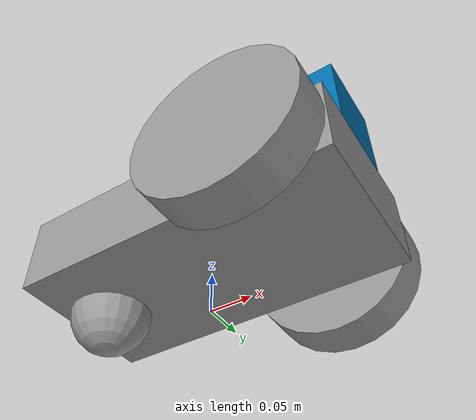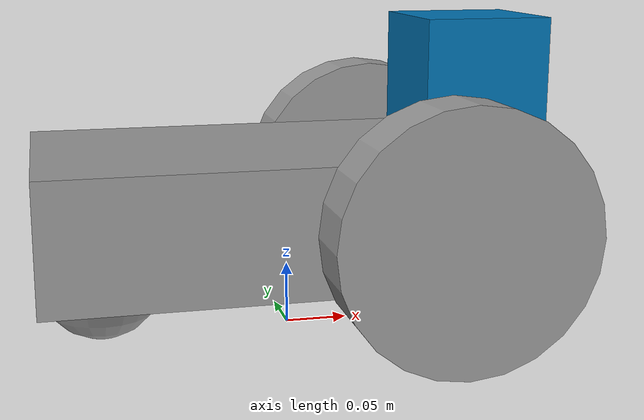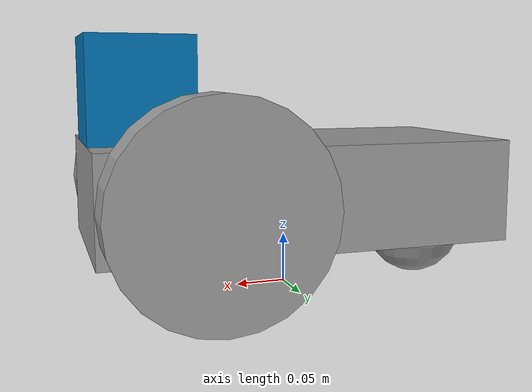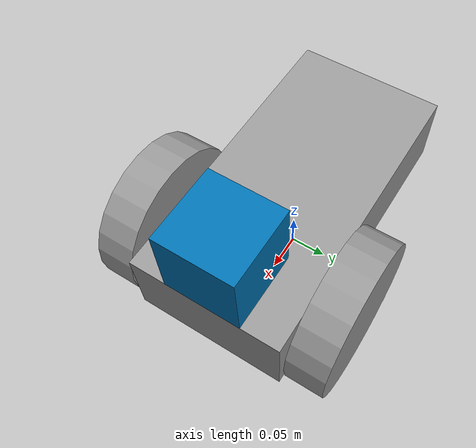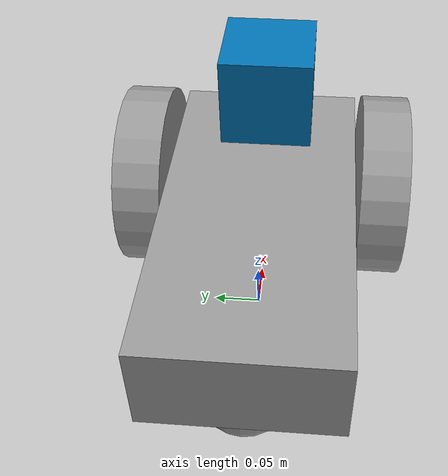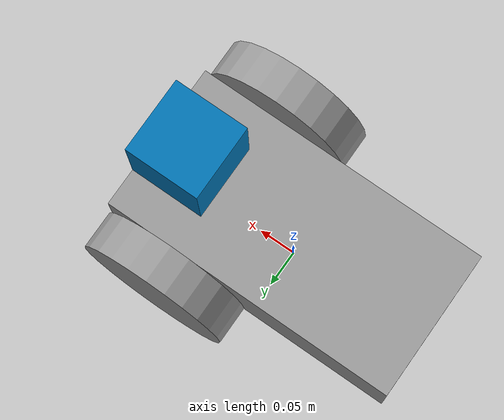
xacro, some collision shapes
<?xml version="1.0"?>
<!-- Revolute-Revolute Manipulator -->
<robot name="kejia" xmlns:xacro="http://www.ros.org/wiki/xacro">

  <!-- Constants for robot dimensions -->
  <xacro:property name="PI" value="3.1415926535897931"/>
  <xacro:property name="mass" value="1" /> <!-- arbitrary value for mass -->
  <xacro:property name="base_length" value=".4" />
  <xacro:property name="base_width" value=".2" />
  <xacro:property name="base_height" value=".1" />

  <xacro:property name="caster_radius" value="0.05" />
  <xacro:property name="mass" value="1" />

  <xacro:property name="wheel_radius" value="2" /> <!-- Link 1 -->

  <!-- Import all Gazebo-customization elements, including Gazebo colors -->
  <xacro:include filename="$(find kejia_description)/urdf/kejia.gazebo" />
  <!-- Import Rviz colors -->
  <xacro:include filename="$(find kejia_description)/urdf/materials.xacro" />

  <!-- Used for fixing robot to Gazebo 'base_link' -->
  <link name="world"/>

  <joint name="fixed" type="floating">
    <parent link="world"/>
    <child link="base_link"/>
  </joint>

  <!-- Base Link -->
  <link name="base_link">
    <collision>
      <origin xyz="0 0 .1" rpy="0 0 0"/>
      <geometry>
        <box size="${base_length} ${base_width} ${base_height}"/>
      </geometry>
    </collision>

    <visual name='visual'>
      <origin xyz="0 0 .1" rpy="0 0 0"/>
      <geometry>
        <box size="${base_length} ${base_width} ${base_height}"/>
      </geometry>
      <material name="grey"/>
    </visual>

    <!--TODO-->
    <inertial>
      <origin xyz="0 0 .1" rpy="0 0 0"/>
      <mass value="${mass}"/>
      <inertia
      ixx="1" ixy="0.0" ixz="0.0"
      iyy="1" iyz="0.0"
      izz="1"/>
    </inertial>

    <collision>
      <origin xyz="-0.5 0 0.05" rpy="0 0 0"/>
      <geometry>
        <sphere radius=".05"/>
      </geometry>
    </collision>

    <visual>
      <origin xyz="-0.15 0 0.05" rpy="0 0 0"/>
      <geometry>
        <sphere radius=".05"/>
      </geometry>
      <material name="grey"/>
    </visual>

  </link>

  <!-- Left Wheel -->
  <link name="left_wheel">
    <collision>
      <origin xyz="0 0 0" rpy="0 1.5707 1.5707"/>
      <geometry>
        <cylinder length=".05" radius=".1"/>
      </geometry>
    </collision>
    <visual>
      <origin xyz="0 0 0" rpy="0 1.5707 1.5707"/>
      <geometry>
        <cylinder length=".05" radius=".1"/>
      </geometry>
      <material name="grey"/>
    </visual>
    <inertial>
      <origin xyz="0 0 0" rpy="0 1.5707 1.5707"/>
      <mass value="${mass}"/>
      <inertia
      ixx="1" ixy="0.0" ixz="0.0"
      iyy="1" iyz="0.0"
      izz="1"/>
    </inertial>
  </link>
  <!-- Right Wheel -->
  <link name="right_wheel">
    <collision>
      <origin xyz="0 0 0" rpy="0 1.5707 1.5707"/>
      <geometry>
        <cylinder length=".05" radius=".1"/>
      </geometry>
    </collision>

    <visual>
      <origin xyz="0 0 0" rpy="0 1.5707 1.5707"/>
      <geometry>
        <cylinder length=".05" radius=".1"/>
      </geometry>
      <material name="grey"/>
    </visual>

    <inertial>
      <origin xyz="0 0 0" rpy="0 1.5707 1.5707"/>
      <mass value="${mass}"/>
      <inertia
      ixx="1" ixy="0.0" ixz="0.0"
      iyy="1" iyz="0.0"
      izz="1"/>
    </inertial>
  </link>

  <joint name="joint1" type="continuous">
    <parent link="base_link"/>
    <child link="left_wheel"/>
    <origin xyz="0.1 0.13 0.1" rpy="0 0 0"/>
    <axis xyz="0 1 0"/>
  </joint>

  <joint name="joint2" type="continuous">
    <origin xyz="0.1 -0.13 0.1" rpy="0 0 0"/>
    <parent link="base_link"/>
    <child link="right_wheel"/>
    <axis xyz="0 1 0"/>
  </joint>

  <!-- Hokuyo Laser -->
  <link name="hokuyo_link">
    <collision>
      <origin xyz="0 0 0" rpy="0 0 0"/>
      <geometry>
	      <box size="0.1 0.1 0.1"/>
      </geometry>
    </collision>

    <visual>
      <origin xyz="0 0 0" rpy="0 0 0"/>
      <geometry>
        <mesh filename="package://kejia_description/meshes/hokuyo.dae"/>
      </geometry>
    </visual>

    <inertial>
      <mass value="1e-5" />
      <origin xyz="0 0 0" rpy="0 0 0"/>
      <inertia ixx="1e-6" ixy="0" ixz="0" iyy="1e-6" iyz="0" izz="1e-6" />
    </inertial>

  </link>

  <joint name="hokuyo_joint" type="fixed">
    <axis xyz="0 1 0" />
    <origin xyz="0.15 0 0.2" rpy="0 0 0"/>
    <parent link="base_link"/>
    <child link="hokuyo_link"/>
  </joint>

  <transmission name="tran1">
    <type>transmission_interface/SimpleTransmission</type>
    <joint name="joint1">
      <hardwareInterface>EffortJointInterface</hardwareInterface>
    </joint>
    <actuator name="motor1">
      <hardwareInterface>EffortJointInterface</hardwareInterface>
      <mechanicalReduction>1</mechanicalReduction>
    </actuator>
  </transmission>

  <transmission name="tran2">
    <type>transmission_interface/SimpleTransmission</type>
    <joint name="joint2">
      <hardwareInterface>EffortJointInterface</hardwareInterface>
    </joint>
    <actuator name="motor2">
      <hardwareInterface>EffortJointInterface</hardwareInterface>
      <mechanicalReduction>1</mechanicalReduction>
    </actuator>
  </transmission>

</robot>
